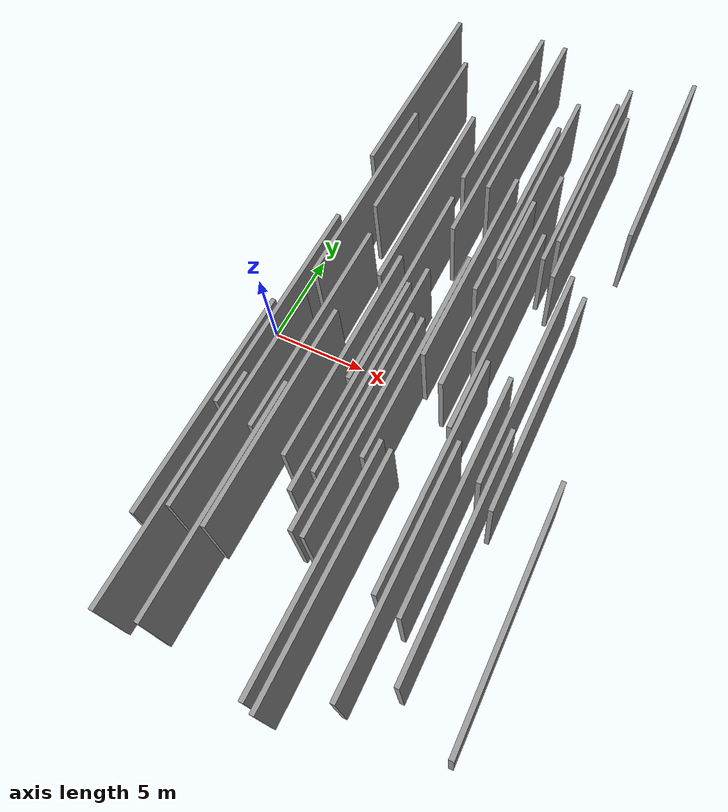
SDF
<sdf version="1.6">
 <world name="default">
  <scene>
   <sky><clouds><speed>12</speed></clouds></sky>
   <ambient>0.4 0.4 0.4 1</ambient>
   <background>0.7 0.7 0.7 1</background>
   <shadows>1</shadows>
  </scene>
  <gravity>0 0 -9.8066</gravity>
  <magnetic_field>6e-06 2.3e-05 -4.2e-05</magnetic_field>
  <physics default="0" name="default_physics" type="ode">
   <ode>
    <solver>
     <type>quick</type>
     <iters>10</iters>
     <sor>1.0</sor>
     <use_dynamic_moi_rescaling>0</use_dynamic_moi_rescaling>
    </solver>
    <constraints>
     <cfm>0</cfm>
     <erp>0.2</erp>
     <contact_max_correcting_vel>100</contact_max_correcting_vel>
     <contact_surface_layer>0.001</contact_surface_layer>
    </constraints>
   </ode>
   <max_step_size>0.004</max_step_size>
   <real_time_factor>1</real_time_factor>
   <real_time_update_rate>250</real_time_update_rate>
  </physics>
  <light name="sun" type="directional">
   <pose>0 0 10 0 0 0</pose>
   <diffuse>0.8 0.8 0.8 1</diffuse>
   <specular>0.2 0.2 0.2 1</specular>
   <attenuation>
    <range>1000</range>
    <constant>0.9</constant>
    <linear>0.01</linear>
    <quadratic>0.001</quadratic>
   </attenuation>
   <direction>-0.5 0.1 -0.9</direction>
  </light>
  <model name="grey_wall_1">
   <static>1</static>
   <pose>15.4531 11.7553 5.0 0.000000 0.000000 1.570796</pose>
   <link name="link">
    <pose>0 0 2.00 0 0 0</pose>
    <collision name="collision"><geometry><box><size>10.00 0.2 4.00</size></box></geometry></collision>
    <visual name="visual">
     <cast_shadows>0</cast_shadows>
     <geometry><box><size>10.00 0.2 4.00</size></box></geometry>
     <material>
      <script>
       <uri>model://grey_wall/materials/scripts</uri>
       <uri>model://grey_wall/materials/textures</uri>
       <name>vrc/grey_wall</name>
      </script>
     </material>
    </visual>
   </link>
  </model>
  <model name="grey_wall_2">
   <static>1</static>
   <pose>7.5312 11.6981 5.0 0.000000 0.000000 1.570796</pose>
   <link name="link">
    <pose>0 0 2.00 0 0 0</pose>
    <collision name="collision"><geometry><box><size>10.00 0.2 4.00</size></box></geometry></collision>
    <visual name="visual">
     <cast_shadows>0</cast_shadows>
     <geometry><box><size>10.00 0.2 4.00</size></box></geometry>
     <material>
      <script>
       <uri>model://grey_wall/materials/scripts</uri>
       <uri>model://grey_wall/materials/textures</uri>
       <name>vrc/grey_wall</name>
      </script>
     </material>
    </visual>
   </link>
  </model>
  <model name="grey_wall_3">
   <static>1</static>
   <pose>11.5941 3.6500 5.0 0.000000 0.000000 1.570796</pose>
   <link name="link">
    <pose>0 0 2.00 0 0 0</pose>
    <collision name="collision"><geometry><box><size>10.00 0.2 4.00</size></box></geometry></collision>
    <visual name="visual">
     <cast_shadows>0</cast_shadows>
     <geometry><box><size>10.00 0.2 4.00</size></box></geometry>
     <material>
      <script>
       <uri>model://grey_wall/materials/scripts</uri>
       <uri>model://grey_wall/materials/textures</uri>
       <name>vrc/grey_wall</name>
      </script>
     </material>
    </visual>
   </link>
  </model>
  <model name="grey_wall_4">
   <static>1</static>
   <pose>5.4451 -10.5621 5.0 0.000000 0.000000 1.570796</pose>
   <link name="link">
    <pose>0 0 2.00 0 0 0</pose>
    <collision name="collision"><geometry><box><size>10.00 0.2 4.00</size></box></geometry></collision>
    <visual name="visual">
     <cast_shadows>0</cast_shadows>
     <geometry><box><size>10.00 0.2 4.00</size></box></geometry>
     <material>
      <script>
       <uri>model://grey_wall/materials/scripts</uri>
       <uri>model://grey_wall/materials/textures</uri>
       <name>vrc/grey_wall</name>
      </script>
     </material>
    </visual>
   </link>
  </model>
  <model name="grey_wall_5">
   <static>1</static>
   <pose>5.1329 -2.7980 5.0 0.000000 0.000000 1.570796</pose>
   <link name="link">
    <pose>0 0 2.00 0 0 0</pose>
    <collision name="collision"><geometry><box><size>10.00 0.2 4.00</size></box></geometry></collision>
    <visual name="visual">
     <cast_shadows>0</cast_shadows>
     <geometry><box><size>10.00 0.2 4.00</size></box></geometry>
     <material>
      <script>
       <uri>model://grey_wall/materials/scripts</uri>
       <uri>model://grey_wall/materials/textures</uri>
       <name>vrc/grey_wall</name>
      </script>
     </material>
    </visual>
   </link>
  </model>
  <model name="grey_wall_6">
   <static>1</static>
   <pose>3.1832 11.1690 5.0 0.000000 0.000000 1.570796</pose>
   <link name="link">
    <pose>0 0 2.00 0 0 0</pose>
    <collision name="collision"><geometry><box><size>10.00 0.2 4.00</size></box></geometry></collision>
    <visual name="visual">
     <cast_shadows>0</cast_shadows>
     <geometry><box><size>10.00 0.2 4.00</size></box></geometry>
     <material>
      <script>
       <uri>model://grey_wall/materials/scripts</uri>
       <uri>model://grey_wall/materials/textures</uri>
       <name>vrc/grey_wall</name>
      </script>
     </material>
    </visual>
   </link>
  </model>
  <model name="grey_wall_7">
   <static>1</static>
   <pose>3.4054 -2.4677 5.0 0.000000 0.000000 1.570796</pose>
   <link name="link">
    <pose>0 0 2.00 0 0 0</pose>
    <collision name="collision"><geometry><box><size>10.00 0.2 4.00</size></box></geometry></collision>
    <visual name="visual">
     <cast_shadows>0</cast_shadows>
     <geometry><box><size>10.00 0.2 4.00</size></box></geometry>
     <material>
      <script>
       <uri>model://grey_wall/materials/scripts</uri>
       <uri>model://grey_wall/materials/textures</uri>
       <name>vrc/grey_wall</name>
      </script>
     </material>
    </visual>
   </link>
  </model>
  <model name="grey_wall_8">
   <static>1</static>
   <pose>6.8893 -3.3155 5.0 0.000000 0.000000 1.570796</pose>
   <link name="link">
    <pose>0 0 2.00 0 0 0</pose>
    <collision name="collision"><geometry><box><size>10.00 0.2 4.00</size></box></geometry></collision>
    <visual name="visual">
     <cast_shadows>0</cast_shadows>
     <geometry><box><size>10.00 0.2 4.00</size></box></geometry>
     <material>
      <script>
       <uri>model://grey_wall/materials/scripts</uri>
       <uri>model://grey_wall/materials/textures</uri>
       <name>vrc/grey_wall</name>
      </script>
     </material>
    </visual>
   </link>
  </model>
  <model name="grey_wall_9">
   <static>1</static>
   <pose>13.9263 -1.3041 5.0 0.000000 0.000000 1.570796</pose>
   <link name="link">
    <pose>0 0 2.00 0 0 0</pose>
    <collision name="collision"><geometry><box><size>10.00 0.2 4.00</size></box></geometry></collision>
    <visual name="visual">
     <cast_shadows>0</cast_shadows>
     <geometry><box><size>10.00 0.2 4.00</size></box></geometry>
     <material>
      <script>
       <uri>model://grey_wall/materials/scripts</uri>
       <uri>model://grey_wall/materials/textures</uri>
       <name>vrc/grey_wall</name>
      </script>
     </material>
    </visual>
   </link>
  </model>
  <model name="grey_wall_10">
   <static>1</static>
   <pose>3.8024 -10.8481 5.0 0.000000 0.000000 1.570796</pose>
   <link name="link">
    <pose>0 0 2.00 0 0 0</pose>
    <collision name="collision"><geometry><box><size>10.00 0.2 4.00</size></box></geometry></collision>
    <visual name="visual">
     <cast_shadows>0</cast_shadows>
     <geometry><box><size>10.00 0.2 4.00</size></box></geometry>
     <material>
      <script>
       <uri>model://grey_wall/materials/scripts</uri>
       <uri>model://grey_wall/materials/textures</uri>
       <name>vrc/grey_wall</name>
      </script>
     </material>
    </visual>
   </link>
  </model>
  <model name="grey_wall_11">
   <static>1</static>
   <pose>10.4314 6.4024 5.0 0.000000 0.000000 1.570796</pose>
   <link name="link">
    <pose>0 0 2.00 0 0 0</pose>
    <collision name="collision"><geometry><box><size>10.00 0.2 4.00</size></box></geometry></collision>
    <visual name="visual">
     <cast_shadows>0</cast_shadows>
     <geometry><box><size>10.00 0.2 4.00</size></box></geometry>
     <material>
      <script>
       <uri>model://grey_wall/materials/scripts</uri>
       <uri>model://grey_wall/materials/textures</uri>
       <name>vrc/grey_wall</name>
      </script>
     </material>
    </visual>
   </link>
  </model>
  <model name="grey_wall_12">
   <static>1</static>
   <pose>7.5670 0.5276 5.0 0.000000 0.000000 1.570796</pose>
   <link name="link">
    <pose>0 0 2.00 0 0 0</pose>
    <collision name="collision"><geometry><box><size>10.00 0.2 4.00</size></box></geometry></collision>
    <visual name="visual">
     <cast_shadows>0</cast_shadows>
     <geometry><box><size>10.00 0.2 4.00</size></box></geometry>
     <material>
      <script>
       <uri>model://grey_wall/materials/scripts</uri>
       <uri>model://grey_wall/materials/textures</uri>
       <name>vrc/grey_wall</name>
      </script>
     </material>
    </visual>
   </link>
  </model>
  <model name="grey_wall_13">
   <static>1</static>
   <pose>12.0381 0.2697 5.0 0.000000 0.000000 1.570796</pose>
   <link name="link">
    <pose>0 0 2.00 0 0 0</pose>
    <collision name="collision"><geometry><box><size>10.00 0.2 4.00</size></box></geometry></collision>
    <visual name="visual">
     <cast_shadows>0</cast_shadows>
     <geometry><box><size>10.00 0.2 4.00</size></box></geometry>
     <material>
      <script>
       <uri>model://grey_wall/materials/scripts</uri>
       <uri>model://grey_wall/materials/textures</uri>
       <name>vrc/grey_wall</name>
      </script>
     </material>
    </visual>
   </link>
  </model>
  <model name="grey_wall_14">
   <static>1</static>
   <pose>12.2694 -6.4486 5.0 0.000000 0.000000 1.570796</pose>
   <link name="link">
    <pose>0 0 2.00 0 0 0</pose>
    <collision name="collision"><geometry><box><size>10.00 0.2 4.00</size></box></geometry></collision>
    <visual name="visual">
     <cast_shadows>0</cast_shadows>
     <geometry><box><size>10.00 0.2 4.00</size></box></geometry>
     <material>
      <script>
       <uri>model://grey_wall/materials/scripts</uri>
       <uri>model://grey_wall/materials/textures</uri>
       <name>vrc/grey_wall</name>
      </script>
     </material>
    </visual>
   </link>
  </model>
  <model name="grey_wall_15">
   <static>1</static>
   <pose>16.7560 -9.9379 5.0 0.000000 0.000000 1.570796</pose>
   <link name="link">
    <pose>0 0 2.00 0 0 0</pose>
    <collision name="collision"><geometry><box><size>10.00 0.2 4.00</size></box></geometry></collision>
    <visual name="visual">
     <cast_shadows>0</cast_shadows>
     <geometry><box><size>10.00 0.2 4.00</size></box></geometry>
     <material>
      <script>
       <uri>model://grey_wall/materials/scripts</uri>
       <uri>model://grey_wall/materials/textures</uri>
       <name>vrc/grey_wall</name>
      </script>
     </material>
    </visual>
   </link>
  </model>
  <model name="grey_wall_16">
   <static>1</static>
   <pose>8.7775 11.6468 5.0 0.000000 0.000000 1.570796</pose>
   <link name="link">
    <pose>0 0 2.00 0 0 0</pose>
    <collision name="collision"><geometry><box><size>10.00 0.2 4.00</size></box></geometry></collision>
    <visual name="visual">
     <cast_shadows>0</cast_shadows>
     <geometry><box><size>10.00 0.2 4.00</size></box></geometry>
     <material>
      <script>
       <uri>model://grey_wall/materials/scripts</uri>
       <uri>model://grey_wall/materials/textures</uri>
       <name>vrc/grey_wall</name>
      </script>
     </material>
    </visual>
   </link>
  </model>
  <model name="grey_wall_17">
   <static>1</static>
   <pose>9.7936 2.6849 5.0 0.000000 0.000000 1.570796</pose>
   <link name="link">
    <pose>0 0 2.00 0 0 0</pose>
    <collision name="collision"><geometry><box><size>10.00 0.2 4.00</size></box></geometry></collision>
    <visual name="visual">
     <cast_shadows>0</cast_shadows>
     <geometry><box><size>10.00 0.2 4.00</size></box></geometry>
     <material>
      <script>
       <uri>model://grey_wall/materials/scripts</uri>
       <uri>model://grey_wall/materials/textures</uri>
       <name>vrc/grey_wall</name>
      </script>
     </material>
    </visual>
   </link>
  </model>
  <model name="grey_wall_18">
   <static>1</static>
   <pose>13.3818 -6.7837 5.0 0.000000 0.000000 1.570796</pose>
   <link name="link">
    <pose>0 0 2.00 0 0 0</pose>
    <collision name="collision"><geometry><box><size>10.00 0.2 4.00</size></box></geometry></collision>
    <visual name="visual">
     <cast_shadows>0</cast_shadows>
     <geometry><box><size>10.00 0.2 4.00</size></box></geometry>
     <material>
      <script>
       <uri>model://grey_wall/materials/scripts</uri>
       <uri>model://grey_wall/materials/textures</uri>
       <name>vrc/grey_wall</name>
      </script>
     </material>
    </visual>
   </link>
  </model>
  <model name="grey_wall_19">
   <static>1</static>
   <pose>8.5625 -5.6985 5.0 0.000000 0.000000 1.570796</pose>
   <link name="link">
    <pose>0 0 2.00 0 0 0</pose>
    <collision name="collision"><geometry><box><size>10.00 0.2 4.00</size></box></geometry></collision>
    <visual name="visual">
     <cast_shadows>0</cast_shadows>
     <geometry><box><size>10.00 0.2 4.00</size></box></geometry>
     <material>
      <script>
       <uri>model://grey_wall/materials/scripts</uri>
       <uri>model://grey_wall/materials/textures</uri>
       <name>vrc/grey_wall</name>
      </script>
     </material>
    </visual>
   </link>
  </model>
  <model name="grey_wall_20">
   <static>1</static>
   <pose>4.1009 -6.7171 5.0 0.000000 0.000000 1.570796</pose>
   <link name="link">
    <pose>0 0 2.00 0 0 0</pose>
    <collision name="collision"><geometry><box><size>10.00 0.2 4.00</size></box></geometry></collision>
    <visual name="visual">
     <cast_shadows>0</cast_shadows>
     <geometry><box><size>10.00 0.2 4.00</size></box></geometry>
     <material>
      <script>
       <uri>model://grey_wall/materials/scripts</uri>
       <uri>model://grey_wall/materials/textures</uri>
       <name>vrc/grey_wall</name>
      </script>
     </material>
    </visual>
   </link>
  </model>
  <model name="grey_wall_21">
   <static>1</static>
   <pose>14.7461 -2.0844 5.0 0.000000 0.000000 1.570796</pose>
   <link name="link">
    <pose>0 0 2.00 0 0 0</pose>
    <collision name="collision"><geometry><box><size>10.00 0.2 4.00</size></box></geometry></collision>
    <visual name="visual">
     <cast_shadows>0</cast_shadows>
     <geometry><box><size>10.00 0.2 4.00</size></box></geometry>
     <material>
      <script>
       <uri>model://grey_wall/materials/scripts</uri>
       <uri>model://grey_wall/materials/textures</uri>
       <name>vrc/grey_wall</name>
      </script>
     </material>
    </visual>
   </link>
  </model>
  <model name="grey_wall_22">
   <static>1</static>
   <pose>12.7361 10.1466 5.0 0.000000 0.000000 1.570796</pose>
   <link name="link">
    <pose>0 0 2.00 0 0 0</pose>
    <collision name="collision"><geometry><box><size>10.00 0.2 4.00</size></box></geometry></collision>
    <visual name="visual">
     <cast_shadows>0</cast_shadows>
     <geometry><box><size>10.00 0.2 4.00</size></box></geometry>
     <material>
      <script>
       <uri>model://grey_wall/materials/scripts</uri>
       <uri>model://grey_wall/materials/textures</uri>
       <name>vrc/grey_wall</name>
      </script>
     </material>
    </visual>
   </link>
  </model>
  <model name="grey_wall_23">
   <static>1</static>
   <pose>3.0648 -7.4768 5.0 0.000000 0.000000 1.570796</pose>
   <link name="link">
    <pose>0 0 2.00 0 0 0</pose>
    <collision name="collision"><geometry><box><size>10.00 0.2 4.00</size></box></geometry></collision>
    <visual name="visual">
     <cast_shadows>0</cast_shadows>
     <geometry><box><size>10.00 0.2 4.00</size></box></geometry>
     <material>
      <script>
       <uri>model://grey_wall/materials/scripts</uri>
       <uri>model://grey_wall/materials/textures</uri>
       <name>vrc/grey_wall</name>
      </script>
     </material>
    </visual>
   </link>
  </model>
  <model name="grey_wall_24">
   <static>1</static>
   <pose>12.6230 -10.0456 5.0 0.000000 0.000000 1.570796</pose>
   <link name="link">
    <pose>0 0 2.00 0 0 0</pose>
    <collision name="collision"><geometry><box><size>10.00 0.2 4.00</size></box></geometry></collision>
    <visual name="visual">
     <cast_shadows>0</cast_shadows>
     <geometry><box><size>10.00 0.2 4.00</size></box></geometry>
     <material>
      <script>
       <uri>model://grey_wall/materials/scripts</uri>
       <uri>model://grey_wall/materials/textures</uri>
       <name>vrc/grey_wall</name>
      </script>
     </material>
    </visual>
   </link>
  </model>
  <model name="grey_wall_25">
   <static>1</static>
   <pose>14.2860 -8.7654 5.0 0.000000 0.000000 1.570796</pose>
   <link name="link">
    <pose>0 0 2.00 0 0 0</pose>
    <collision name="collision"><geometry><box><size>10.00 0.2 4.00</size></box></geometry></collision>
    <visual name="visual">
     <cast_shadows>0</cast_shadows>
     <geometry><box><size>10.00 0.2 4.00</size></box></geometry>
     <material>
      <script>
       <uri>model://grey_wall/materials/scripts</uri>
       <uri>model://grey_wall/materials/textures</uri>
       <name>vrc/grey_wall</name>
      </script>
     </material>
    </visual>
   </link>
  </model>
  <model name="grey_wall_26">
   <static>1</static>
   <pose>10.9788 1.7926 5.0 0.000000 0.000000 1.570796</pose>
   <link name="link">
    <pose>0 0 2.00 0 0 0</pose>
    <collision name="collision"><geometry><box><size>10.00 0.2 4.00</size></box></geometry></collision>
    <visual name="visual">
     <cast_shadows>0</cast_shadows>
     <geometry><box><size>10.00 0.2 4.00</size></box></geometry>
     <material>
      <script>
       <uri>model://grey_wall/materials/scripts</uri>
       <uri>model://grey_wall/materials/textures</uri>
       <name>vrc/grey_wall</name>
      </script>
     </material>
    </visual>
   </link>
  </model>
  <model name="grey_wall_27">
   <static>1</static>
   <pose>9.5898 -2.1866 5.0 0.000000 0.000000 1.570796</pose>
   <link name="link">
    <pose>0 0 2.00 0 0 0</pose>
    <collision name="collision"><geometry><box><size>10.00 0.2 4.00</size></box></geometry></collision>
    <visual name="visual">
     <cast_shadows>0</cast_shadows>
     <geometry><box><size>10.00 0.2 4.00</size></box></geometry>
     <material>
      <script>
       <uri>model://grey_wall/materials/scripts</uri>
       <uri>model://grey_wall/materials/textures</uri>
       <name>vrc/grey_wall</name>
      </script>
     </material>
    </visual>
   </link>
  </model>
  <model name="grey_wall_28">
   <static>1</static>
   <pose>4.6417 8.5941 5.0 0.000000 0.000000 1.570796</pose>
   <link name="link">
    <pose>0 0 2.00 0 0 0</pose>
    <collision name="collision"><geometry><box><size>10.00 0.2 4.00</size></box></geometry></collision>
    <visual name="visual">
     <cast_shadows>0</cast_shadows>
     <geometry><box><size>10.00 0.2 4.00</size></box></geometry>
     <material>
      <script>
       <uri>model://grey_wall/materials/scripts</uri>
       <uri>model://grey_wall/materials/textures</uri>
       <name>vrc/grey_wall</name>
      </script>
     </material>
    </visual>
   </link>
  </model>
  <model name="grey_wall_29">
   <static>1</static>
   <pose>7.7877 -4.4069 5.0 0.000000 0.000000 1.570796</pose>
   <link name="link">
    <pose>0 0 2.00 0 0 0</pose>
    <collision name="collision"><geometry><box><size>10.00 0.2 4.00</size></box></geometry></collision>
    <visual name="visual">
     <cast_shadows>0</cast_shadows>
     <geometry><box><size>10.00 0.2 4.00</size></box></geometry>
     <material>
      <script>
       <uri>model://grey_wall/materials/scripts</uri>
       <uri>model://grey_wall/materials/textures</uri>
       <name>vrc/grey_wall</name>
      </script>
     </material>
    </visual>
   </link>
  </model>
  <model name="grey_wall_30">
   <static>1</static>
   <pose>8.2854 8.8772 5.0 0.000000 0.000000 1.570796</pose>
   <link name="link">
    <pose>0 0 2.00 0 0 0</pose>
    <collision name="collision"><geometry><box><size>10.00 0.2 4.00</size></box></geometry></collision>
    <visual name="visual">
     <cast_shadows>0</cast_shadows>
     <geometry><box><size>10.00 0.2 4.00</size></box></geometry>
     <material>
      <script>
       <uri>model://grey_wall/materials/scripts</uri>
       <uri>model://grey_wall/materials/textures</uri>
       <name>vrc/grey_wall</name>
      </script>
     </material>
    </visual>
   </link>
  </model>
  <model name="grey_wall_31">
   <static>1</static>
   <pose>10.4401 -11.3963 5.0 0.000000 0.000000 1.570796</pose>
   <link name="link">
    <pose>0 0 2.00 0 0 0</pose>
    <collision name="collision"><geometry><box><size>10.00 0.2 4.00</size></box></geometry></collision>
    <visual name="visual">
     <cast_shadows>0</cast_shadows>
     <geometry><box><size>10.00 0.2 4.00</size></box></geometry>
     <material>
      <script>
       <uri>model://grey_wall/materials/scripts</uri>
       <uri>model://grey_wall/materials/textures</uri>
       <name>vrc/grey_wall</name>
      </script>
     </material>
    </visual>
   </link>
  </model>
  <model name="grey_wall_32">
   <static>1</static>
   <pose>6.4770 5.3683 5.0 0.000000 0.000000 1.570796</pose>
   <link name="link">
    <pose>0 0 2.00 0 0 0</pose>
    <collision name="collision"><geometry><box><size>10.00 0.2 4.00</size></box></geometry></collision>
    <visual name="visual">
     <cast_shadows>0</cast_shadows>
     <geometry><box><size>10.00 0.2 4.00</size></box></geometry>
     <material>
      <script>
       <uri>model://grey_wall/materials/scripts</uri>
       <uri>model://grey_wall/materials/textures</uri>
       <name>vrc/grey_wall</name>
      </script>
     </material>
    </visual>
   </link>
  </model>
  <model name="grey_wall_33">
   <static>1</static>
   <pose>9.0533 -5.7252 5.0 0.000000 0.000000 1.570796</pose>
   <link name="link">
    <pose>0 0 2.00 0 0 0</pose>
    <collision name="collision"><geometry><box><size>10.00 0.2 4.00</size></box></geometry></collision>
    <visual name="visual">
     <cast_shadows>0</cast_shadows>
     <geometry><box><size>10.00 0.2 4.00</size></box></geometry>
     <material>
      <script>
       <uri>model://grey_wall/materials/scripts</uri>
       <uri>model://grey_wall/materials/textures</uri>
       <name>vrc/grey_wall</name>
      </script>
     </material>
    </visual>
   </link>
  </model>
  <model name="grey_wall_34">
   <static>1</static>
   <pose>5.6517 -6.8525 5.0 0.000000 0.000000 1.570796</pose>
   <link name="link">
    <pose>0 0 2.00 0 0 0</pose>
    <collision name="collision"><geometry><box><size>10.00 0.2 4.00</size></box></geometry></collision>
    <visual name="visual">
     <cast_shadows>0</cast_shadows>
     <geometry><box><size>10.00 0.2 4.00</size></box></geometry>
     <material>
      <script>
       <uri>model://grey_wall/materials/scripts</uri>
       <uri>model://grey_wall/materials/textures</uri>
       <name>vrc/grey_wall</name>
      </script>
     </material>
    </visual>
   </link>
  </model>
  <model name="grey_wall_35">
   <static>1</static>
   <pose>9.9285 -11.2080 5.0 0.000000 0.000000 1.570796</pose>
   <link name="link">
    <pose>0 0 2.00 0 0 0</pose>
    <collision name="collision"><geometry><box><size>10.00 0.2 4.00</size></box></geometry></collision>
    <visual name="visual">
     <cast_shadows>0</cast_shadows>
     <geometry><box><size>10.00 0.2 4.00</size></box></geometry>
     <material>
      <script>
       <uri>model://grey_wall/materials/scripts</uri>
       <uri>model://grey_wall/materials/textures</uri>
       <name>vrc/grey_wall</name>
      </script>
     </material>
    </visual>
   </link>
  </model>
  <model name="grey_wall_36">
   <static>1</static>
   <pose>8.2167 -3.4398 5.0 0.000000 0.000000 1.570796</pose>
   <link name="link">
    <pose>0 0 2.00 0 0 0</pose>
    <collision name="collision"><geometry><box><size>10.00 0.2 4.00</size></box></geometry></collision>
    <visual name="visual">
     <cast_shadows>0</cast_shadows>
     <geometry><box><size>10.00 0.2 4.00</size></box></geometry>
     <material>
      <script>
       <uri>model://grey_wall/materials/scripts</uri>
       <uri>model://grey_wall/materials/textures</uri>
       <name>vrc/grey_wall</name>
      </script>
     </material>
    </visual>
   </link>
  </model>
  <model name="grey_wall_37">
   <static>1</static>
   <pose>3.8683 4.4992 5.0 0.000000 0.000000 1.570796</pose>
   <link name="link">
    <pose>0 0 2.00 0 0 0</pose>
    <collision name="collision"><geometry><box><size>10.00 0.2 4.00</size></box></geometry></collision>
    <visual name="visual">
     <cast_shadows>0</cast_shadows>
     <geometry><box><size>10.00 0.2 4.00</size></box></geometry>
     <material>
      <script>
       <uri>model://grey_wall/materials/scripts</uri>
       <uri>model://grey_wall/materials/textures</uri>
       <name>vrc/grey_wall</name>
      </script>
     </material>
    </visual>
   </link>
  </model>
  <model name="grey_wall_38">
   <static>1</static>
   <pose>13.1597 8.3167 5.0 0.000000 0.000000 1.570796</pose>
   <link name="link">
    <pose>0 0 2.00 0 0 0</pose>
    <collision name="collision"><geometry><box><size>10.00 0.2 4.00</size></box></geometry></collision>
    <visual name="visual">
     <cast_shadows>0</cast_shadows>
     <geometry><box><size>10.00 0.2 4.00</size></box></geometry>
     <material>
      <script>
       <uri>model://grey_wall/materials/scripts</uri>
       <uri>model://grey_wall/materials/textures</uri>
       <name>vrc/grey_wall</name>
      </script>
     </material>
    </visual>
   </link>
  </model>
  <model name="grey_wall_39">
   <static>1</static>
   <pose>10.7532 8.2175 5.0 0.000000 0.000000 1.570796</pose>
   <link name="link">
    <pose>0 0 2.00 0 0 0</pose>
    <collision name="collision"><geometry><box><size>10.00 0.2 4.00</size></box></geometry></collision>
    <visual name="visual">
     <cast_shadows>0</cast_shadows>
     <geometry><box><size>10.00 0.2 4.00</size></box></geometry>
     <material>
      <script>
       <uri>model://grey_wall/materials/scripts</uri>
       <uri>model://grey_wall/materials/textures</uri>
       <name>vrc/grey_wall</name>
      </script>
     </material>
    </visual>
   </link>
  </model>
  <model name="grey_wall_40">
   <static>1</static>
   <pose>12.4640 8.9863 5.0 0.000000 0.000000 1.570796</pose>
   <link name="link">
    <pose>0 0 2.00 0 0 0</pose>
    <collision name="collision"><geometry><box><size>10.00 0.2 4.00</size></box></geometry></collision>
    <visual name="visual">
     <cast_shadows>0</cast_shadows>
     <geometry><box><size>10.00 0.2 4.00</size></box></geometry>
     <material>
      <script>
       <uri>model://grey_wall/materials/scripts</uri>
       <uri>model://grey_wall/materials/textures</uri>
       <name>vrc/grey_wall</name>
      </script>
     </material>
    </visual>
   </link>
  </model>
 </world>
</sdf>
